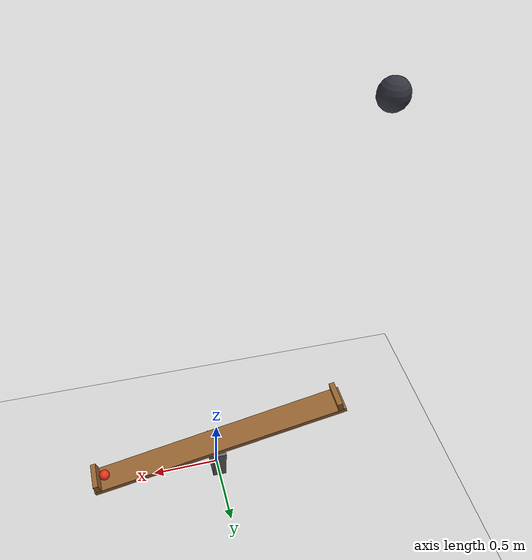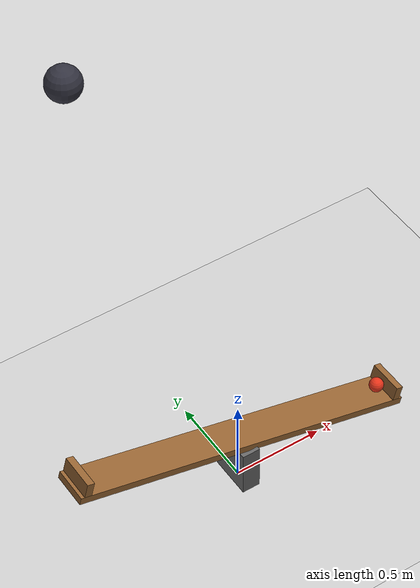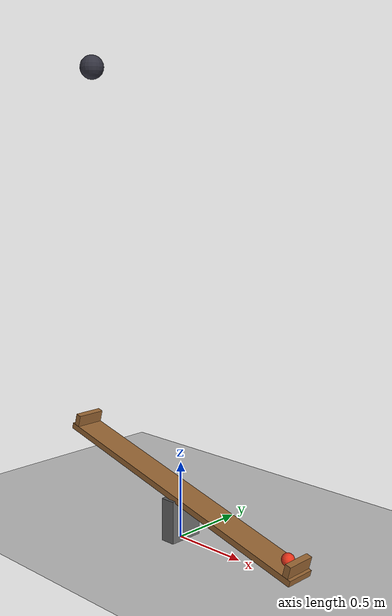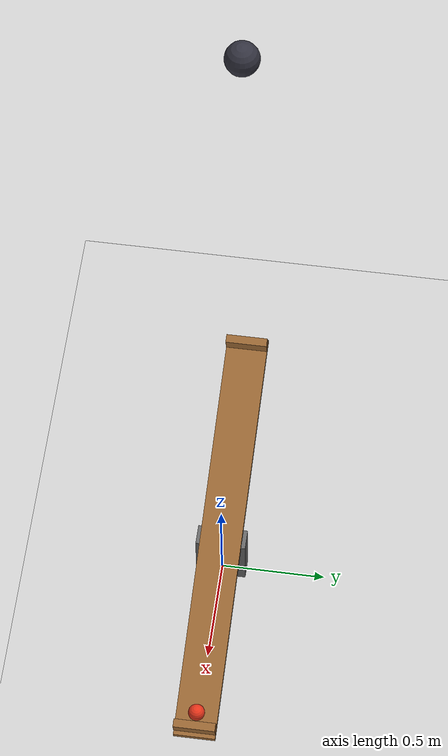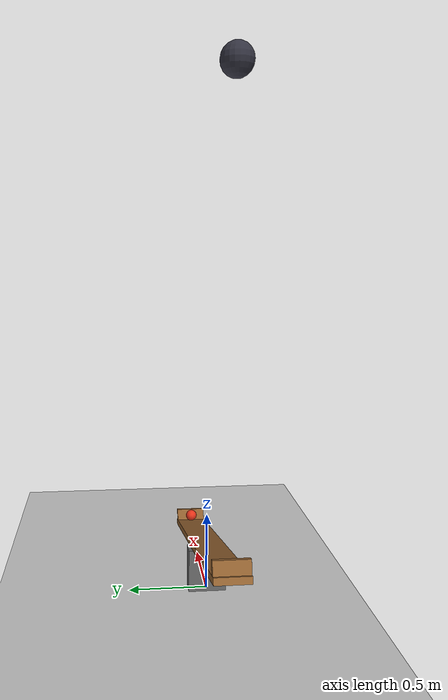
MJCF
<mujoco model="seesaw_catapult">
  <option timestep="0.002" gravity="0 0 -9.81"/>

  <visual>
    <global offwidth="1280" offheight="720"/>
  </visual>

  <asset>
    <material name="floor_mat" rgba="0.8 0.8 0.8 1"/>
    <material name="plank_mat" rgba="0.6 0.4 0.2 1"/>
    <material name="weight_mat" rgba="0.2 0.2 0.25 1"/>
    <material name="ball_mat" rgba="0.9 0.2 0.1 1"/>
  </asset>

  <worldbody>
    <light name="sun" pos="0 0 5" dir="0 0 -1" directional="true"/>
    <geom name="floor" type="plane" size="5 5 0.1" material="floor_mat" friction="1 0.005 0.005"/>

    <!-- visual-only fulcrum under the pivot -->
    <geom name="fulcrum" type="box" pos="0 0 0.14" size="0.05 0.12 0.14" rgba="0.4 0.4 0.4 1" contype="0" conaffinity="0"/>

    <!-- seesaw: tilted 15 deg so the +x (ball) end is down, -x (weight) end is up -->
    <body name="seesaw" pos="0 0 0.3" euler="0 15 0">
      <joint name="seesaw_hinge" type="hinge" axis="0 1 0" pos="0 0 0" limited="true" range="-30 0" damping="0.5"/>
      <geom name="plank" type="box" size="1.0 0.1 0.02" mass="1.0" material="plank_mat"/>
      <geom name="lip_ball" type="box" pos="0.96 0 0.06" size="0.02 0.1 0.04" mass="0.05" material="plank_mat"/>
      <geom name="lip_weight" type="box" pos="-0.96 0 0.06" size="0.02 0.1 0.04" mass="0.05" material="plank_mat"/>
    </body>

    <!-- 1 kg weight dropped from rest above the raised end -->
    <body name="weight" pos="-0.82 0 3.0">
      <freejoint name="weight_free"/>
      <geom name="weight" type="sphere" size="0.08" mass="1.0" condim="6" friction="1 0.01 0.01" material="weight_mat"/>
    </body>

    <!-- 100 g ball resting in the pocket at the lowered end (plank-local x=0.89, z=0.061) -->
    <body name="ball" pos="0.8755 0 0.1286">
      <freejoint name="ball_free"/>
      <geom name="ball" type="sphere" size="0.04" mass="0.1" condim="6" friction="1 0.01 0.01" material="ball_mat"/>
    </body>
  </worldbody>
</mujoco>
